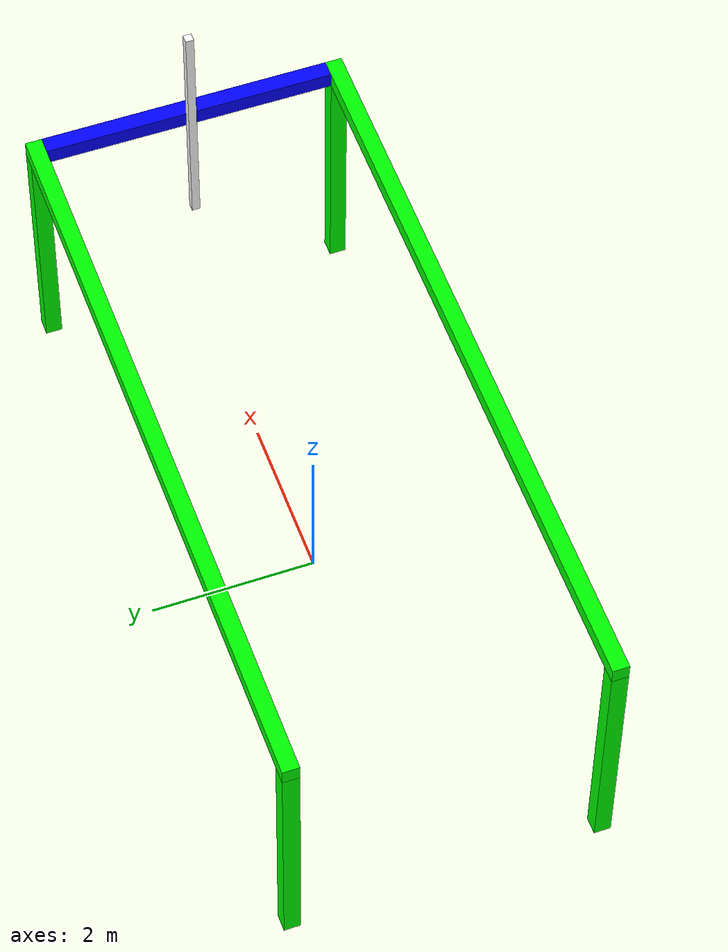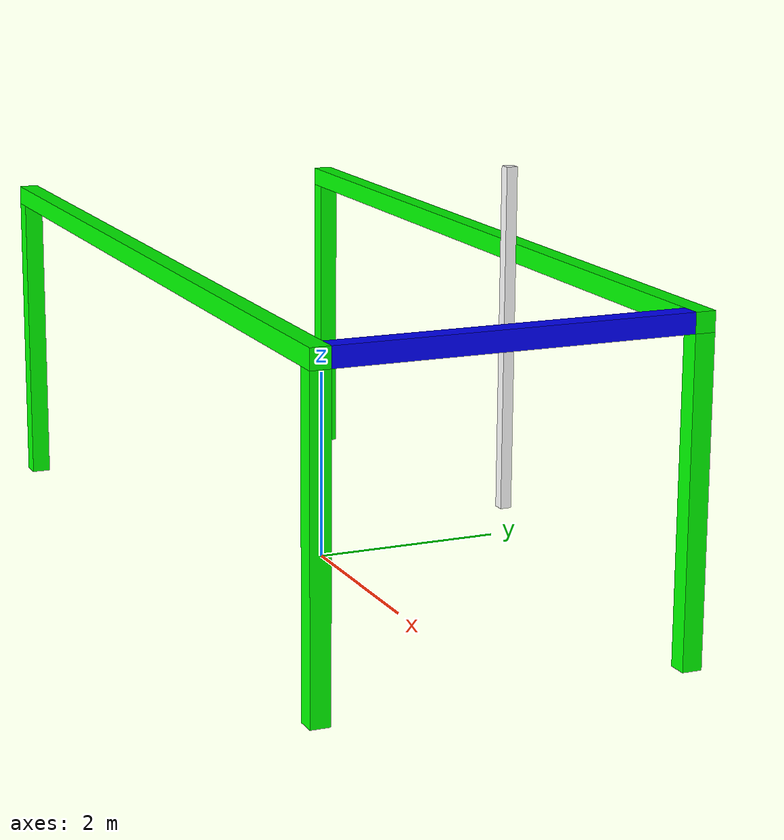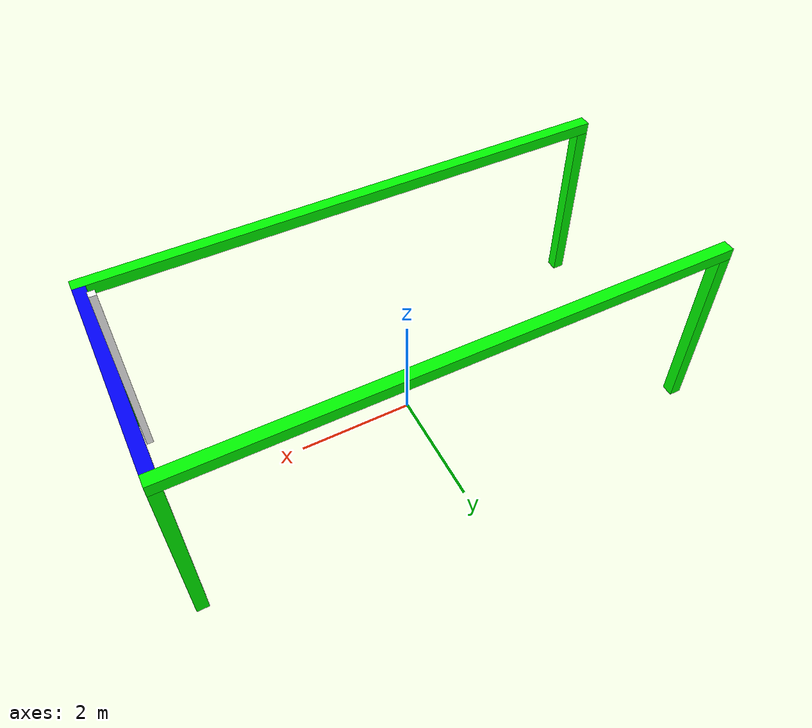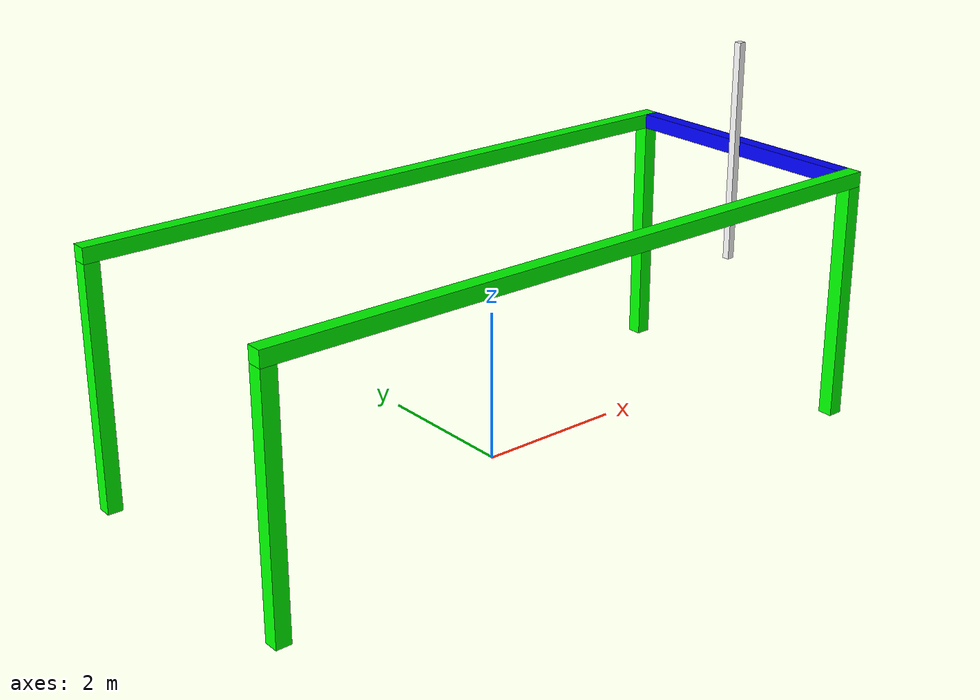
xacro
<?xml version="1.0"?>
<robot xmlns:xacro="http://www.ros.org/wiki/xacro" name="robot">
    <xacro:arg name="initial_positions_file" default="initial_positions.yaml" />

    <!-- Import robot urdf file -->
    <xacro:include filename="$(find robot_description)/urdf/robot.urdf.xacro" />

    <!-- Import control_xacro -->
    <xacro:include filename="robot.ros2_control.xacro" />

    <xacro:robot_ros2_control name="FakeSystem" initial_positions_file="$(arg initial_positions_file)"/>

</robot>

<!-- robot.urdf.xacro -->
<robot xmlns:xacro="http://www.ros.org/wiki/xacro" name="robot">

    <xacro:include filename="robot_core.xacro"/>

</robot>

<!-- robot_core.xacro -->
<robot xmlns:xacro="http://www.ros.org/wiki/xacro" >

    <xacro:include filename="inertial_macros.xacro"/>

    <!-- COLORS -->

    <material name="green">
        <color rgba="0.0 1.0 0.0 1.0"/>
    </material>

    <material name="blue">
        <color rgba="0.0 0.0 1.0 1.0"/>
    </material>

    <material name="white">
        <color rgba="1.0 1.0 1.0 1.0"/>
    </material>

    <!-- VARIABLES -->

    <xacro:property name="middle_link_length" value="9.0" />
    <xacro:property name="middle_link_width" value="0.2" />
    <xacro:property name="middle_link_height" value="0.2" />

    <xacro:property name="leg_length" value="3.2" />
    <xacro:property name="leg_width" value="0.2" />
    <xacro:property name="leg_height" value="0.2" />

    <xacro:property name="slider_fb_link_length" value="3.5" />
    <xacro:property name="slider_fb_link_width" value="0.2" />
    <xacro:property name="slider_fb_link_height" value="0.2" />

    <xacro:property name="slider_ud_link_length" value="${leg_length-leg_length*0.05}" />
    <xacro:property name="slider_ud_link_width" value="0.1" />
    <xacro:property name="slider_ud_link_height" value="0.1" />

    <!-- WORLD LINK -->

    <link name="world"/>

    <!-- BASE LEFT -->

    <link name="middle_link_a">
        <visual>
            <origin xyz="0.0 0.0 0.0" rpy="0.0 0.0 0.0"/>
            <geometry>
                <box size="${middle_link_length} ${middle_link_width} ${middle_link_width}"/>
            </geometry>
            <material name="green"/>
        </visual>
        <collision>
            <origin xyz="0.0 0.0 0.0" rpy="0.0 0.0 0.0"/>
            <geometry>
                <box size="${middle_link_length} ${middle_link_width} ${middle_link_width}"/>
            </geometry>
        </collision>
        <xacro:inertial_box mass="100" x="${middle_link_length}" y="${middle_link_width}" z="${middle_link_width}">
            <origin xyz="0.0 0.0 0.0" rpy="0.0 0.0 0.0"/>
        </xacro:inertial_box>
    </link>

    <joint name="middle_link_a_world_joint" type="fixed">
        <parent link="world"/>
        <child link="middle_link_a"/>
        <origin xyz="0.0 ${slider_fb_link_length/2+middle_link_width/2} ${leg_length+leg_height/2}"/>
    </joint>

    <link name="left_leg_link_a">
        <visual>
            <origin xyz="0.0 0.0 0.0" rpy="0.0 0.0 0.0"/>
            <geometry>
                <box size="${leg_height} ${leg_width} ${leg_length}"/>
            </geometry>
            <material name="green"/>
        </visual>
        <collision>
            <origin xyz="0.0 0.0 0.0" rpy="0.0 0.0 0.0"/>
            <geometry>
                <box size="${leg_height} ${leg_width} ${leg_length}"/>
            </geometry>
        </collision>
        <xacro:inertial_box mass="100" x="${leg_height}" y="${leg_width}" z="${leg_length}">
            <origin xyz="0.0 0.0 0.0" rpy="0.0 0.0 0.0"/>
        </xacro:inertial_box>
    </link>

    <joint name="left_leg_link_a_world_joint" type="fixed">
        <parent link="world"/>
        <child link="left_leg_link_a"/>
        <origin xyz="-${middle_link_length/2-leg_width/2} ${slider_fb_link_length/2+leg_width/2} ${leg_length/2}" rpy="0.0 0.0 0.0"/>
    </joint>

    <link name="right_leg_link_a">
        <visual>
            <origin xyz="0.0 0.0 0.0" rpy="0.0 0.0 0.0"/>
            <geometry>
                <box size="${leg_height} ${leg_width} ${leg_length}"/>
            </geometry>
            <material name="green"/>
        </visual>
        <collision>
            <origin xyz="0.0 0.0 0.0" rpy="0.0 0.0 0.0"/>
            <geometry>
                <box size="${leg_height} ${leg_width} ${leg_length}"/>
            </geometry>
        </collision>
        <xacro:inertial_box mass="100" x="${leg_height}" y="${leg_width}" z="${leg_length}">
            <origin xyz="0.0 0.0 0.0" rpy="0.0 0.0 0.0"/>
        </xacro:inertial_box>
    </link>

    <joint name="right_leg_link_a_world_joint" type="fixed">
        <parent link="world"/>
        <child link="right_leg_link_a"/>
        <origin xyz="${middle_link_length/2-leg_width/2} ${slider_fb_link_length/2+leg_width/2} ${leg_length/2}" rpy="0.0 0.0 0.0"/>
    </joint>

    <!-- BASE RIGHT -->

    <link name="middle_link_b">
        <visual>
            <origin xyz="0.0 0.0 0.0" rpy="0.0 0.0 0.0"/>
            <geometry>
                <box size="${middle_link_length} ${middle_link_width} ${middle_link_width}"/>
            </geometry>
            <material name="green"/>
        </visual>
        <collision>
            <origin xyz="0.0 0.0 0.0" rpy="0.0 0.0 0.0"/>
            <geometry>
                <box size="${middle_link_length} ${middle_link_width} ${middle_link_width}"/>
            </geometry>
        </collision>
        <xacro:inertial_box mass="100" x="${middle_link_length}" y="${middle_link_width}" z="${middle_link_width}">
            <origin xyz="0.0 0.0 0.0" rpy="0.0 0.0 0.0"/>
        </xacro:inertial_box>
    </link>

    <joint name="middle_link_b_world_joint" type="fixed">
        <parent link="world"/>
        <child link="middle_link_b"/>
        <origin xyz="0.0 -${slider_fb_link_length/2+middle_link_width/2} ${leg_length+leg_height/2}"/>
    </joint>

    <link name="left_leg_link_b">
        <visual>
            <origin xyz="0.0 0.0 0.0" rpy="0.0 0.0 0.0"/>
            <geometry>
                <box size="${leg_height} ${leg_width} ${leg_length}"/>
            </geometry>
            <material name="green"/>
        </visual>
        <collision>
            <origin xyz="0.0 0.0 0.0" rpy="0.0 0.0 0.0"/>
            <geometry>
                <box size="${leg_height} ${leg_width} ${leg_length}"/>
            </geometry>
        </collision>
        <xacro:inertial_box mass="100" x="${leg_height}" y="${leg_width}" z="${leg_length}">
            <origin xyz="0.0 0.0 0.0" rpy="0.0 0.0 0.0"/>
        </xacro:inertial_box>
    </link>

    <joint name="left_leg_link_b_world_joint" type="fixed">
        <parent link="world"/>
        <child link="left_leg_link_b"/>
        <origin xyz="-${middle_link_length/2-leg_width/2} -${slider_fb_link_length/2+leg_width/2} ${leg_length/2}" rpy="0.0 0.0 0.0"/>
    </joint>

    <link name="right_leg_link_b">
        <visual>
            <origin xyz="0.0 0.0 0.0" rpy="0.0 0.0 0.0"/>
            <geometry>
                <box size="${leg_height} ${leg_width} ${leg_length}"/>
            </geometry>
            <material name="green"/>
        </visual>
        <collision>
            <origin xyz="0.0 0.0 0.0" rpy="0.0 0.0 0.0"/>
            <geometry>
                <box size="${leg_height} ${leg_width} ${leg_length}"/>
            </geometry>
        </collision>
        <xacro:inertial_box mass="100" x="${leg_height}" y="${leg_width}" z="${leg_length}">
            <origin xyz="0.0 0.0 0.0" rpy="0.0 0.0 0.0"/>
        </xacro:inertial_box>
    </link>

    <joint name="right_leg_link_b_world_joint" type="fixed">
        <parent link="world"/>
        <child link="right_leg_link_b"/>
        <origin xyz="${middle_link_length/2-leg_width/2} -${slider_fb_link_length/2+leg_width/2} ${leg_length/2}" rpy="0.0 0.0 0.0"/>
    </joint>

    <!-- FB SLIDER LINK -->

    <link name="slider_fb_link">
        <visual>
            <origin xyz="0.0 0.0 0.0" rpy="0.0 0.0 0.0"/>
            <geometry>
                <box size="${slider_fb_link_width} ${slider_fb_link_length} ${slider_fb_link_height}"/>
            </geometry>
            <material name="blue"/>
        </visual>
        <collision>
            <origin xyz="0.0 0.0 0.0" rpy="0.0 0.0 0.0"/>
            <geometry>
                <box size="${slider_fb_link_width} ${slider_fb_link_length} ${slider_fb_link_height}"/>
            </geometry>
        </collision>
        <xacro:inertial_box mass="100" x="${slider_fb_link_width}" y="${slider_fb_link_length}" z="${slider_fb_link_height}">
            <origin xyz="0.0 0.0 0.0" rpy="0.0 0.0 0.0"/>
        </xacro:inertial_box>
    </link>

    <joint name="slider_fb_link_middle_link_a_joint" type="prismatic">
        <parent link="middle_link_a"/>
        <child link="slider_fb_link"/>
        <origin xyz="${middle_link_length/2-slider_fb_link_width/2} -${slider_fb_link_length/2+middle_link_width/2} 0.0"/>
        <axis xyz="-1 0 0"/>
        <limit lower="0" upper="${middle_link_length-slider_fb_link_width}" velocity="100" effort="100"/>
    </joint>

    <!-- VIRTUAL LINK -->
    <!-- this is required to be able to provide translational motion over two axis -->

    <link name="virtual_link"/>

    <joint name="virtual_link_slider_fb_link_joint" type="prismatic">
        <parent link="slider_fb_link"/>
        <child link="virtual_link"/>
        <origin xyz="-${slider_fb_link_width/2+slider_ud_link_width/2} 0.0 ${slider_ud_link_length/2}"/>
        <axis xyz="0 0 -1"/>
        <limit lower="${slider_fb_link_height/2}" upper="${slider_ud_link_length}" velocity="100" effort="100"/>
    </joint>

    <!-- UD SLIDER LINK -->

    <link name="slider_ud_link">
        <visual>
            <origin xyz="0.0 0.0 0.0" rpy="0.0 0.0 0.0"/>
            <geometry>
                <box size="${slider_ud_link_height} ${slider_ud_link_width} ${slider_ud_link_length}"/>
            </geometry>
            <material name="white"/>
        </visual>
        <collision>
            <origin xyz="0.0 0.0 0.0" rpy="0.0 0.0 0.0"/>
            <geometry>
                <box size="${slider_ud_link_height} ${slider_ud_link_width} ${slider_ud_link_length}"/>
            </geometry>
        </collision>
        <xacro:inertial_box mass="100" x="${slider_ud_link_height}" y="${slider_ud_link_width}" z="${slider_ud_link_length}">
            <origin xyz="0.0 0.0 0.0" rpy="0.0 0.0 0.0"/>
        </xacro:inertial_box>
    </link>

    <joint name="sslider_ud_link_virtual_link_joint" type="prismatic">
        <parent link="virtual_link"/>
        <child link="slider_ud_link"/>
        <axis xyz="0 -1 0"/>
        <limit lower="-${slider_fb_link_length/2-slider_fb_link_width/2}" upper="${slider_fb_link_length/2-slider_fb_link_width/2}" velocity="100" effort="100"/>
    </joint>

    <link name="virtual_gripper_link"/>

    <joint name="virtual_gripper_link_sslider_ud_link_joint" type="fixed">
        <parent link="slider_ud_link"/>
        <child link="virtual_gripper_link"/>
        <origin xyz="0.0 0.0 -${slider_ud_link_length/2}"/>
    </joint>

</robot>
